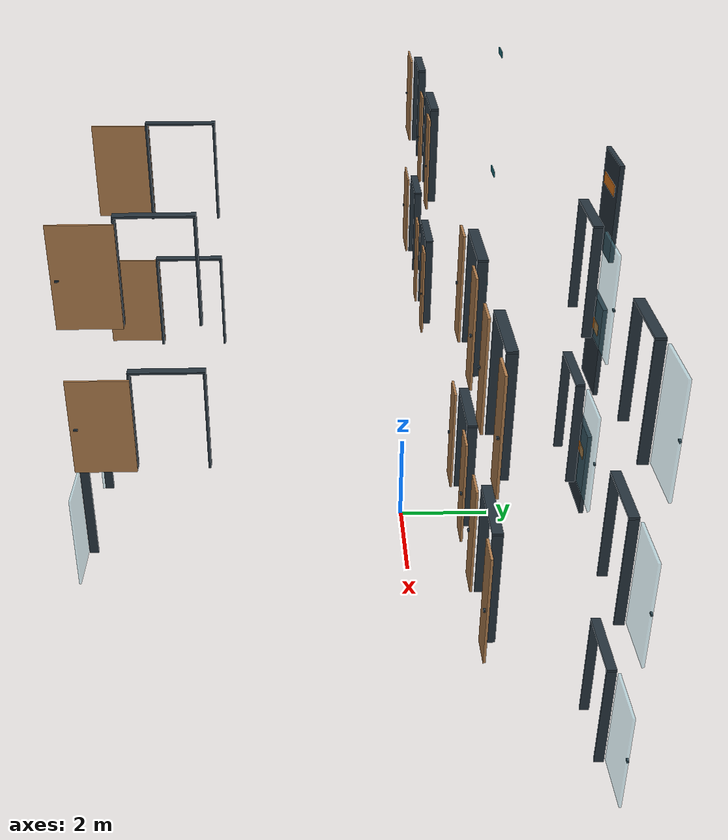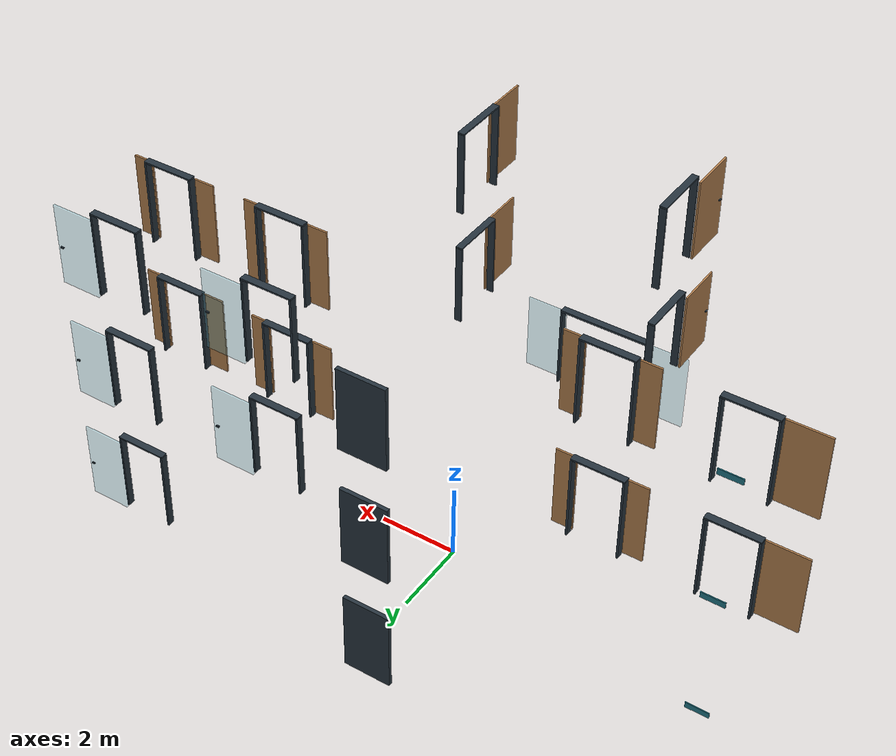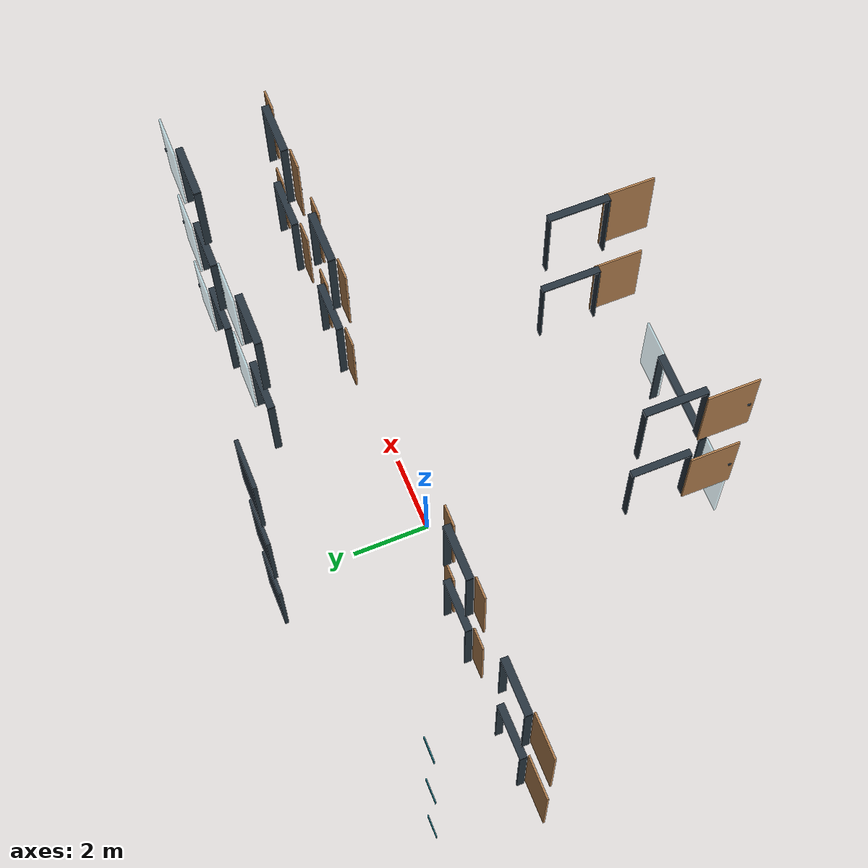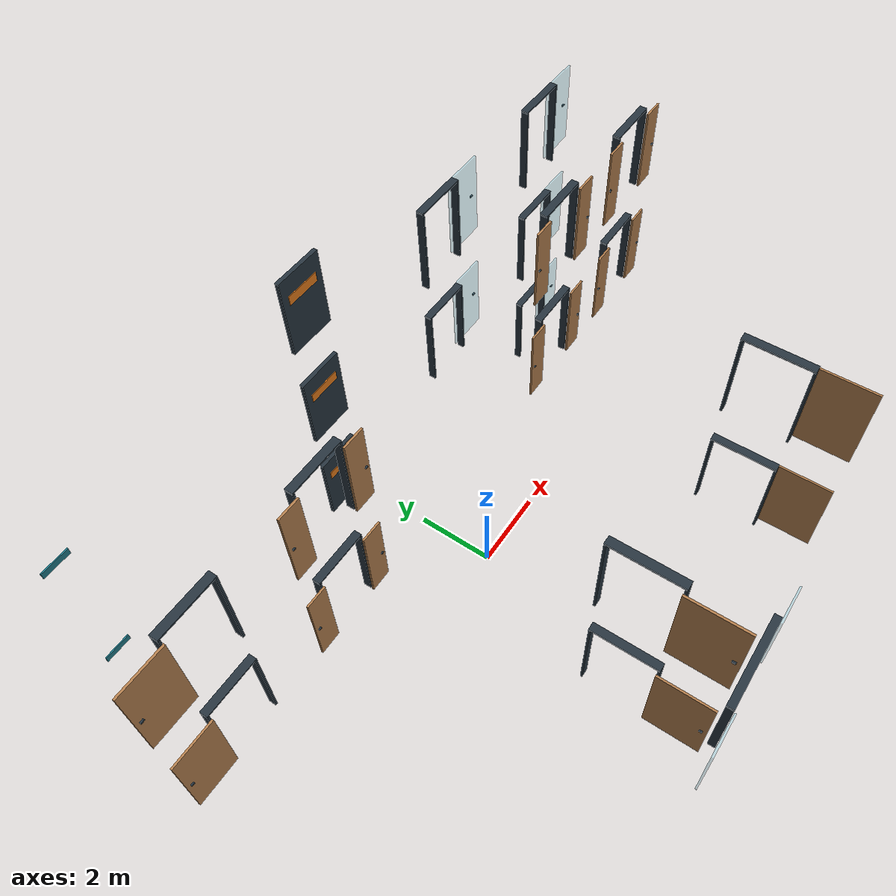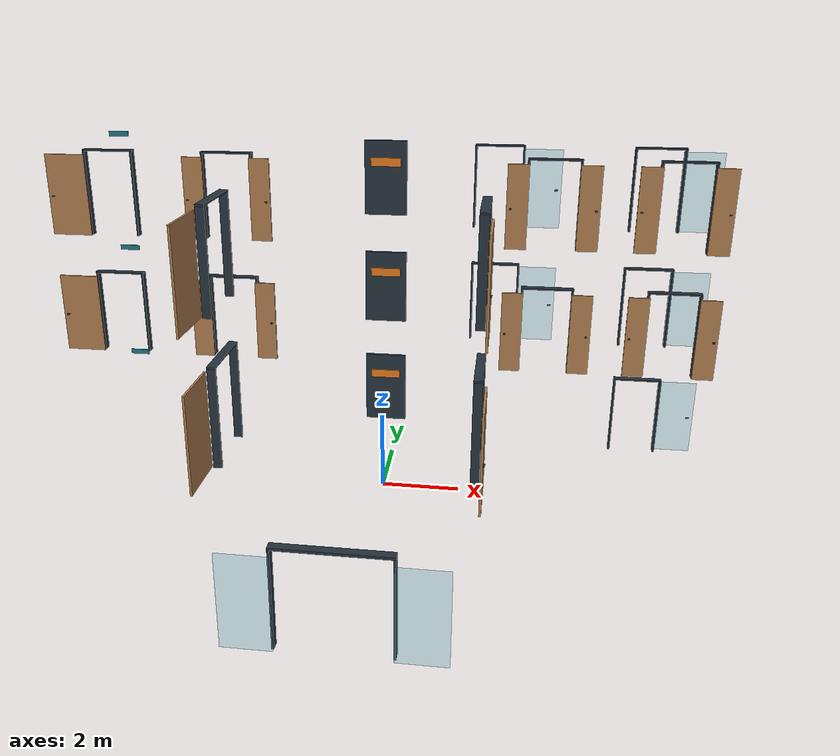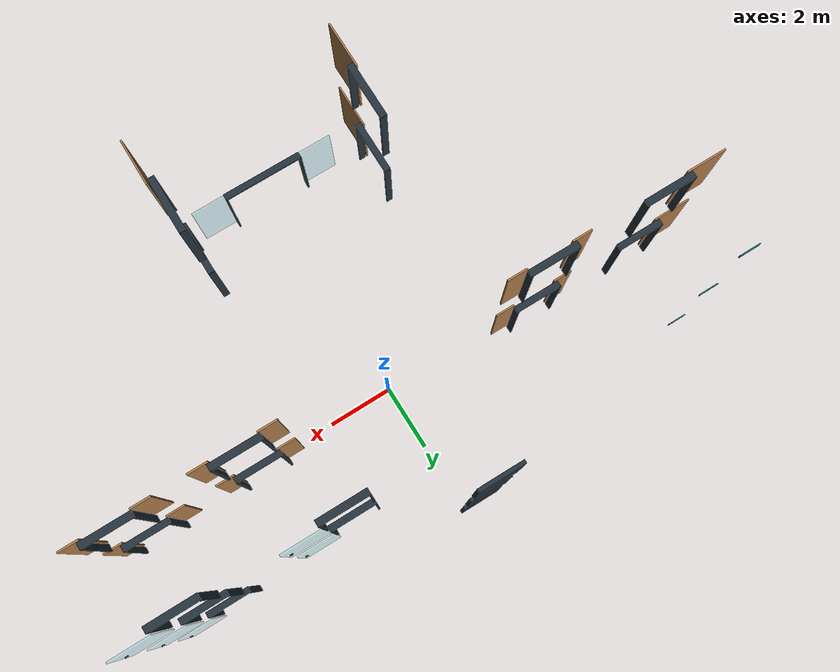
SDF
<sdf version="1.6">
 <world name="three_floor">
  <model name="f1_s2_door_nn2">
   <static>true</static>
   <link name="f1_s2_door_nn2_link">
    <collision name="f1_s2_door_nn2_link_jamb_-1_collision">
     <pose>6.175 3 1.08 0 0 0</pose>
     <geometry><box><size>0.05 0.18 2.16</size></box></geometry>
    </collision>
    <visual name="f1_s2_door_nn2_link_jamb_-1_visual">
     <pose>6.175 3 1.08 0 0 0</pose>
     <geometry><box><size>0.05 0.18 2.16</size></box></geometry>
     <material><ambient>0.15 0.2 0.24 1</ambient><diffuse>0.15 0.2 0.24 1</diffuse></material>
    </visual>
    <collision name="f1_s2_door_nn2_link_jamb_1_collision">
     <pose>7.425 3 1.08 0 0 0</pose>
     <geometry><box><size>0.05 0.18 2.16</size></box></geometry>
    </collision>
    <visual name="f1_s2_door_nn2_link_jamb_1_visual">
     <pose>7.425 3 1.08 0 0 0</pose>
     <geometry><box><size>0.05 0.18 2.16</size></box></geometry>
     <material><ambient>0.15 0.2 0.24 1</ambient><diffuse>0.15 0.2 0.24 1</diffuse></material>
    </visual>
    <collision name="f1_s2_door_nn2_link_header_collision">
     <pose>6.8 3 2.18 0 0 0</pose>
     <geometry><box><size>1.3 0.18 0.04</size></box></geometry>
    </collision>
    <visual name="f1_s2_door_nn2_link_header_visual">
     <pose>6.8 3 2.18 0 0 0</pose>
     <geometry><box><size>1.3 0.18 0.04</size></box></geometry>
     <material><ambient>0.15 0.2 0.24 1</ambient><diffuse>0.15 0.2 0.24 1</diffuse></material>
    </visual>
    <collision name="f1_s2_door_nn2_link_open_leaf_collision">
     <pose>7.92 3.15 1.04 0 0 0</pose>
     <geometry><box><size>1.04 0.045 2.08</size></box></geometry>
    </collision>
    <visual name="f1_s2_door_nn2_link_open_leaf_visual">
     <pose>7.92 3.15 1.04 0 0 0</pose>
     <geometry><box><size>1.04 0.045 2.08</size></box></geometry>
     <material><ambient>0.44 0.76 0.83 1</ambient><diffuse>0.44 0.76 0.83 1</diffuse></material>
     <transparency>0.65</transparency>
    </visual>
    <collision name="f1_s2_door_nn2_link_handle_collision">
     <pose>8.32 3.19 1 0 0 0</pose>
     <geometry><box><size>0.08 0.035 0.035</size></box></geometry>
    </collision>
    <visual name="f1_s2_door_nn2_link_handle_visual">
     <pose>8.32 3.19 1 0 0 0</pose>
     <geometry><box><size>0.08 0.035 0.035</size></box></geometry>
     <material><ambient>0.15 0.2 0.24 1</ambient><diffuse>0.15 0.2 0.24 1</diffuse></material>
    </visual>
   </link>
  </model>
  <model name="f1_s2_lift_safety">
   <static>true</static>
   <link name="f1_s2_lift_safety_link">
    <collision name="f1_s2_lift_safety_link_solid_guard_collision">
     <pose>-0.5 4.2 1.05 0 0 0</pose>
     <geometry><box><size>1.2 0.1 2.1</size></box></geometry>
    </collision>
    <visual name="f1_s2_lift_safety_link_solid_guard_visual">
     <pose>-0.5 4.2 1.05 0 0 0</pose>
     <geometry><box><size>1.2 0.1 2.1</size></box></geometry>
     <material><ambient>0.15 0.2 0.24 1</ambient><diffuse>0.15 0.2 0.24 1</diffuse></material>
    </visual>
    <visual name="f1_s2_lift_safety_link_warning_visual">
     <pose>-0.5 4.139 1.5 0 0 0</pose>
     <geometry><box><size>0.85 0.015 0.24</size></box></geometry>
     <material><ambient>0.9 0.48 0.1 1</ambient><diffuse>0.9 0.48 0.1 1</diffuse></material>
    </visual>
   </link>
  </model>
  <model name="f1_s2_stair_sign">
   <static>true</static>
   <link name="f1_s2_stair_sign_link">
    <visual name="f1_s2_stair_sign_link_floor_indicator_visual">
     <pose>-7.75 2.91 2.31 0 0 0</pose>
     <geometry><box><size>0.55 0.025 0.14</size></box></geometry>
     <material><ambient>0.12 0.46 0.52 1</ambient><diffuse>0.12 0.46 0.52 1</diffuse></material>
    </visual>
   </link>
  </model>
  <model name="f2_s2_door_sw">
   <static>true</static>
   <link name="f2_s2_door_sw_link">
    <collision name="f2_s2_door_sw_link_jamb_-1_collision">
     <pose>-2.6 -5.525 4.28 0 0 0</pose>
     <geometry><box><size>0.18 0.05 2.16</size></box></geometry>
    </collision>
    <visual name="f2_s2_door_sw_link_jamb_-1_visual">
     <pose>-2.6 -5.525 4.28 0 0 0</pose>
     <geometry><box><size>0.18 0.05 2.16</size></box></geometry>
     <material><ambient>0.15 0.2 0.24 1</ambient><diffuse>0.15 0.2 0.24 1</diffuse></material>
    </visual>
    <collision name="f2_s2_door_sw_link_jamb_1_collision">
     <pose>-2.6 -4.075 4.28 0 0 0</pose>
     <geometry><box><size>0.18 0.05 2.16</size></box></geometry>
    </collision>
    <visual name="f2_s2_door_sw_link_jamb_1_visual">
     <pose>-2.6 -4.075 4.28 0 0 0</pose>
     <geometry><box><size>0.18 0.05 2.16</size></box></geometry>
     <material><ambient>0.15 0.2 0.24 1</ambient><diffuse>0.15 0.2 0.24 1</diffuse></material>
    </visual>
    <collision name="f2_s2_door_sw_link_header_collision">
     <pose>-2.6 -4.8 5.38 0 0 0</pose>
     <geometry><box><size>0.18 1.5 0.04</size></box></geometry>
    </collision>
    <visual name="f2_s2_door_sw_link_header_visual">
     <pose>-2.6 -4.8 5.38 0 0 0</pose>
     <geometry><box><size>0.18 1.5 0.04</size></box></geometry>
     <material><ambient>0.15 0.2 0.24 1</ambient><diffuse>0.15 0.2 0.24 1</diffuse></material>
    </visual>
    <collision name="f2_s2_door_sw_link_open_leaf_collision">
     <pose>-2.75 -6.12 4.24 0 0 0</pose>
     <geometry><box><size>0.045 1.24 2.08</size></box></geometry>
    </collision>
    <visual name="f2_s2_door_sw_link_open_leaf_visual">
     <pose>-2.75 -6.12 4.24 0 0 0</pose>
     <geometry><box><size>0.045 1.24 2.08</size></box></geometry>
     <material><ambient>0.69 0.49 0.3 1</ambient><diffuse>0.69 0.49 0.3 1</diffuse></material>
    </visual>
    <collision name="f2_s2_door_sw_link_handle_collision">
     <pose>-2.79 -6.62 4.2 0 0 0</pose>
     <geometry><box><size>0.035 0.08 0.035</size></box></geometry>
    </collision>
    <visual name="f2_s2_door_sw_link_handle_visual">
     <pose>-2.79 -6.62 4.2 0 0 0</pose>
     <geometry><box><size>0.035 0.08 0.035</size></box></geometry>
     <material><ambient>0.15 0.2 0.24 1</ambient><diffuse>0.15 0.2 0.24 1</diffuse></material>
    </visual>
   </link>
  </model>
  <model name="f2_s2_door_se">
   <static>true</static>
   <link name="f2_s2_door_se_link">
    <collision name="f2_s2_door_se_link_jamb_-1_collision">
     <pose>2.6 -5.525 4.28 0 0 0</pose>
     <geometry><box><size>0.18 0.05 2.16</size></box></geometry>
    </collision>
    <visual name="f2_s2_door_se_link_jamb_-1_visual">
     <pose>2.6 -5.525 4.28 0 0 0</pose>
     <geometry><box><size>0.18 0.05 2.16</size></box></geometry>
     <material><ambient>0.15 0.2 0.24 1</ambient><diffuse>0.15 0.2 0.24 1</diffuse></material>
    </visual>
    <collision name="f2_s2_door_se_link_jamb_1_collision">
     <pose>2.6 -4.075 4.28 0 0 0</pose>
     <geometry><box><size>0.18 0.05 2.16</size></box></geometry>
    </collision>
    <visual name="f2_s2_door_se_link_jamb_1_visual">
     <pose>2.6 -4.075 4.28 0 0 0</pose>
     <geometry><box><size>0.18 0.05 2.16</size></box></geometry>
     <material><ambient>0.15 0.2 0.24 1</ambient><diffuse>0.15 0.2 0.24 1</diffuse></material>
    </visual>
    <collision name="f2_s2_door_se_link_header_collision">
     <pose>2.6 -4.8 5.38 0 0 0</pose>
     <geometry><box><size>0.18 1.5 0.04</size></box></geometry>
    </collision>
    <visual name="f2_s2_door_se_link_header_visual">
     <pose>2.6 -4.8 5.38 0 0 0</pose>
     <geometry><box><size>0.18 1.5 0.04</size></box></geometry>
     <material><ambient>0.15 0.2 0.24 1</ambient><diffuse>0.15 0.2 0.24 1</diffuse></material>
    </visual>
    <collision name="f2_s2_door_se_link_open_leaf_collision">
     <pose>2.75 -6.12 4.24 0 0 0</pose>
     <geometry><box><size>0.045 1.24 2.08</size></box></geometry>
    </collision>
    <visual name="f2_s2_door_se_link_open_leaf_visual">
     <pose>2.75 -6.12 4.24 0 0 0</pose>
     <geometry><box><size>0.045 1.24 2.08</size></box></geometry>
     <material><ambient>0.69 0.49 0.3 1</ambient><diffuse>0.69 0.49 0.3 1</diffuse></material>
    </visual>
    <collision name="f2_s2_door_se_link_handle_collision">
     <pose>2.79 -6.62 4.2 0 0 0</pose>
     <geometry><box><size>0.035 0.08 0.035</size></box></geometry>
    </collision>
    <visual name="f2_s2_door_se_link_handle_visual">
     <pose>2.79 -6.62 4.2 0 0 0</pose>
     <geometry><box><size>0.035 0.08 0.035</size></box></geometry>
     <material><ambient>0.15 0.2 0.24 1</ambient><diffuse>0.15 0.2 0.24 1</diffuse></material>
    </visual>
   </link>
  </model>
  <model name="f2_s2_door_wn1">
   <static>true</static>
   <link name="f2_s2_door_wn1_link">
    <collision name="f2_s2_door_wn1_link_jamb_-1_collision">
     <pose>-7.775 0.8 4.28 0 0 0</pose>
     <geometry><box><size>0.05 0.18 2.16</size></box></geometry>
    </collision>
    <visual name="f2_s2_door_wn1_link_jamb_-1_visual">
     <pose>-7.775 0.8 4.28 0 0 0</pose>
     <geometry><box><size>0.05 0.18 2.16</size></box></geometry>
     <material><ambient>0.15 0.2 0.24 1</ambient><diffuse>0.15 0.2 0.24 1</diffuse></material>
    </visual>
    <collision name="f2_s2_door_wn1_link_jamb_1_collision">
     <pose>-6.525 0.8 4.28 0 0 0</pose>
     <geometry><box><size>0.05 0.18 2.16</size></box></geometry>
    </collision>
    <visual name="f2_s2_door_wn1_link_jamb_1_visual">
     <pose>-6.525 0.8 4.28 0 0 0</pose>
     <geometry><box><size>0.05 0.18 2.16</size></box></geometry>
     <material><ambient>0.15 0.2 0.24 1</ambient><diffuse>0.15 0.2 0.24 1</diffuse></material>
    </visual>
    <collision name="f2_s2_door_wn1_link_header_collision">
     <pose>-7.15 0.8 5.38 0 0 0</pose>
     <geometry><box><size>1.3 0.18 0.04</size></box></geometry>
    </collision>
    <visual name="f2_s2_door_wn1_link_header_visual">
     <pose>-7.15 0.8 5.38 0 0 0</pose>
     <geometry><box><size>1.3 0.18 0.04</size></box></geometry>
     <material><ambient>0.15 0.2 0.24 1</ambient><diffuse>0.15 0.2 0.24 1</diffuse></material>
    </visual>
    <collision name="f2_s2_door_wn1_link_open_leaf_collision">
     <pose>-8.27 0.65 4.24 0 0 0</pose>
     <geometry><box><size>1.04 0.045 2.08</size></box></geometry>
    </collision>
    <visual name="f2_s2_door_wn1_link_open_leaf_visual">
     <pose>-8.27 0.65 4.24 0 0 0</pose>
     <geometry><box><size>1.04 0.045 2.08</size></box></geometry>
     <material><ambient>0.69 0.49 0.3 1</ambient><diffuse>0.69 0.49 0.3 1</diffuse></material>
    </visual>
    <collision name="f2_s2_door_wn1_link_handle_collision">
     <pose>-8.67 0.61 4.2 0 0 0</pose>
     <geometry><box><size>0.08 0.035 0.035</size></box></geometry>
    </collision>
    <visual name="f2_s2_door_wn1_link_handle_visual">
     <pose>-8.67 0.61 4.2 0 0 0</pose>
     <geometry><box><size>0.08 0.035 0.035</size></box></geometry>
     <material><ambient>0.15 0.2 0.24 1</ambient><diffuse>0.15 0.2 0.24 1</diffuse></material>
    </visual>
   </link>
  </model>
  <model name="f2_s2_door_wn2">
   <static>true</static>
   <link name="f2_s2_door_wn2_link">
    <collision name="f2_s2_door_wn2_link_jamb_-1_collision">
     <pose>-4.675 0.8 4.28 0 0 0</pose>
     <geometry><box><size>0.05 0.18 2.16</size></box></geometry>
    </collision>
    <visual name="f2_s2_door_wn2_link_jamb_-1_visual">
     <pose>-4.675 0.8 4.28 0 0 0</pose>
     <geometry><box><size>0.05 0.18 2.16</size></box></geometry>
     <material><ambient>0.15 0.2 0.24 1</ambient><diffuse>0.15 0.2 0.24 1</diffuse></material>
    </visual>
    <collision name="f2_s2_door_wn2_link_jamb_1_collision">
     <pose>-3.425 0.8 4.28 0 0 0</pose>
     <geometry><box><size>0.05 0.18 2.16</size></box></geometry>
    </collision>
    <visual name="f2_s2_door_wn2_link_jamb_1_visual">
     <pose>-3.425 0.8 4.28 0 0 0</pose>
     <geometry><box><size>0.05 0.18 2.16</size></box></geometry>
     <material><ambient>0.15 0.2 0.24 1</ambient><diffuse>0.15 0.2 0.24 1</diffuse></material>
    </visual>
    <collision name="f2_s2_door_wn2_link_header_collision">
     <pose>-4.05 0.8 5.38 0 0 0</pose>
     <geometry><box><size>1.3 0.18 0.04</size></box></geometry>
    </collision>
    <visual name="f2_s2_door_wn2_link_header_visual">
     <pose>-4.05 0.8 5.38 0 0 0</pose>
     <geometry><box><size>1.3 0.18 0.04</size></box></geometry>
     <material><ambient>0.15 0.2 0.24 1</ambient><diffuse>0.15 0.2 0.24 1</diffuse></material>
    </visual>
    <collision name="f2_s2_door_wn2_link_open_leaf_-1_collision">
     <pose>-4.91 0.65 4.24 0 0 0</pose>
     <geometry><box><size>0.52 0.045 2.08</size></box></geometry>
    </collision>
    <visual name="f2_s2_door_wn2_link_open_leaf_-1_visual">
     <pose>-4.91 0.65 4.24 0 0 0</pose>
     <geometry><box><size>0.52 0.045 2.08</size></box></geometry>
     <material><ambient>0.69 0.49 0.3 1</ambient><diffuse>0.69 0.49 0.3 1</diffuse></material>
    </visual>
    <collision name="f2_s2_door_wn2_link_handle_-1_collision">
     <pose>-5.07 0.61 4.2 0 0 0</pose>
     <geometry><box><size>0.06 0.035 0.035</size></box></geometry>
    </collision>
    <visual name="f2_s2_door_wn2_link_handle_-1_visual">
     <pose>-5.07 0.61 4.2 0 0 0</pose>
     <geometry><box><size>0.06 0.035 0.035</size></box></geometry>
     <material><ambient>0.15 0.2 0.24 1</ambient><diffuse>0.15 0.2 0.24 1</diffuse></material>
    </visual>
    <collision name="f2_s2_door_wn2_link_open_leaf_1_collision">
     <pose>-3.19 0.65 4.24 0 0 0</pose>
     <geometry><box><size>0.52 0.045 2.08</size></box></geometry>
    </collision>
    <visual name="f2_s2_door_wn2_link_open_leaf_1_visual">
     <pose>-3.19 0.65 4.24 0 0 0</pose>
     <geometry><box><size>0.52 0.045 2.08</size></box></geometry>
     <material><ambient>0.69 0.49 0.3 1</ambient><diffuse>0.69 0.49 0.3 1</diffuse></material>
    </visual>
    <collision name="f2_s2_door_wn2_link_handle_1_collision">
     <pose>-3.03 0.61 4.2 0 0 0</pose>
     <geometry><box><size>0.06 0.035 0.035</size></box></geometry>
    </collision>
    <visual name="f2_s2_door_wn2_link_handle_1_visual">
     <pose>-3.03 0.61 4.2 0 0 0</pose>
     <geometry><box><size>0.06 0.035 0.035</size></box></geometry>
     <material><ambient>0.15 0.2 0.24 1</ambient><diffuse>0.15 0.2 0.24 1</diffuse></material>
    </visual>
   </link>
  </model>
  <model name="f2_s2_door_en1">
   <static>true</static>
   <link name="f2_s2_door_en1_link">
    <collision name="f2_s2_door_en1_link_jamb_-1_collision">
     <pose>3.425 0.8 4.28 0 0 0</pose>
     <geometry><box><size>0.05 0.18 2.16</size></box></geometry>
    </collision>
    <visual name="f2_s2_door_en1_link_jamb_-1_visual">
     <pose>3.425 0.8 4.28 0 0 0</pose>
     <geometry><box><size>0.05 0.18 2.16</size></box></geometry>
     <material><ambient>0.15 0.2 0.24 1</ambient><diffuse>0.15 0.2 0.24 1</diffuse></material>
    </visual>
    <collision name="f2_s2_door_en1_link_jamb_1_collision">
     <pose>4.675 0.8 4.28 0 0 0</pose>
     <geometry><box><size>0.05 0.18 2.16</size></box></geometry>
    </collision>
    <visual name="f2_s2_door_en1_link_jamb_1_visual">
     <pose>4.675 0.8 4.28 0 0 0</pose>
     <geometry><box><size>0.05 0.18 2.16</size></box></geometry>
     <material><ambient>0.15 0.2 0.24 1</ambient><diffuse>0.15 0.2 0.24 1</diffuse></material>
    </visual>
    <collision name="f2_s2_door_en1_link_header_collision">
     <pose>4.05 0.8 5.38 0 0 0</pose>
     <geometry><box><size>1.3 0.18 0.04</size></box></geometry>
    </collision>
    <visual name="f2_s2_door_en1_link_header_visual">
     <pose>4.05 0.8 5.38 0 0 0</pose>
     <geometry><box><size>1.3 0.18 0.04</size></box></geometry>
     <material><ambient>0.15 0.2 0.24 1</ambient><diffuse>0.15 0.2 0.24 1</diffuse></material>
    </visual>
    <collision name="f2_s2_door_en1_link_open_leaf_-1_collision">
     <pose>3.19 0.65 4.24 0 0 0</pose>
     <geometry><box><size>0.52 0.045 2.08</size></box></geometry>
    </collision>
    <visual name="f2_s2_door_en1_link_open_leaf_-1_visual">
     <pose>3.19 0.65 4.24 0 0 0</pose>
     <geometry><box><size>0.52 0.045 2.08</size></box></geometry>
     <material><ambient>0.69 0.49 0.3 1</ambient><diffuse>0.69 0.49 0.3 1</diffuse></material>
    </visual>
    <collision name="f2_s2_door_en1_link_handle_-1_collision">
     <pose>3.03 0.61 4.2 0 0 0</pose>
     <geometry><box><size>0.06 0.035 0.035</size></box></geometry>
    </collision>
    <visual name="f2_s2_door_en1_link_handle_-1_visual">
     <pose>3.03 0.61 4.2 0 0 0</pose>
     <geometry><box><size>0.06 0.035 0.035</size></box></geometry>
     <material><ambient>0.15 0.2 0.24 1</ambient><diffuse>0.15 0.2 0.24 1</diffuse></material>
    </visual>
    <collision name="f2_s2_door_en1_link_open_leaf_1_collision">
     <pose>4.91 0.65 4.24 0 0 0</pose>
     <geometry><box><size>0.52 0.045 2.08</size></box></geometry>
    </collision>
    <visual name="f2_s2_door_en1_link_open_leaf_1_visual">
     <pose>4.91 0.65 4.24 0 0 0</pose>
     <geometry><box><size>0.52 0.045 2.08</size></box></geometry>
     <material><ambient>0.69 0.49 0.3 1</ambient><diffuse>0.69 0.49 0.3 1</diffuse></material>
    </visual>
    <collision name="f2_s2_door_en1_link_handle_1_collision">
     <pose>5.07 0.61 4.2 0 0 0</pose>
     <geometry><box><size>0.06 0.035 0.035</size></box></geometry>
    </collision>
    <visual name="f2_s2_door_en1_link_handle_1_visual">
     <pose>5.07 0.61 4.2 0 0 0</pose>
     <geometry><box><size>0.06 0.035 0.035</size></box></geometry>
     <material><ambient>0.15 0.2 0.24 1</ambient><diffuse>0.15 0.2 0.24 1</diffuse></material>
    </visual>
   </link>
  </model>
  <model name="f2_s2_door_en2">
   <static>true</static>
   <link name="f2_s2_door_en2_link">
    <collision name="f2_s2_door_en2_link_jamb_-1_collision">
     <pose>6.525 0.8 4.28 0 0 0</pose>
     <geometry><box><size>0.05 0.18 2.16</size></box></geometry>
    </collision>
    <visual name="f2_s2_door_en2_link_jamb_-1_visual">
     <pose>6.525 0.8 4.28 0 0 0</pose>
     <geometry><box><size>0.05 0.18 2.16</size></box></geometry>
     <material><ambient>0.15 0.2 0.24 1</ambient><diffuse>0.15 0.2 0.24 1</diffuse></material>
    </visual>
    <collision name="f2_s2_door_en2_link_jamb_1_collision">
     <pose>7.775 0.8 4.28 0 0 0</pose>
     <geometry><box><size>0.05 0.18 2.16</size></box></geometry>
    </collision>
    <visual name="f2_s2_door_en2_link_jamb_1_visual">
     <pose>7.775 0.8 4.28 0 0 0</pose>
     <geometry><box><size>0.05 0.18 2.16</size></box></geometry>
     <material><ambient>0.15 0.2 0.24 1</ambient><diffuse>0.15 0.2 0.24 1</diffuse></material>
    </visual>
    <collision name="f2_s2_door_en2_link_header_collision">
     <pose>7.15 0.8 5.38 0 0 0</pose>
     <geometry><box><size>1.3 0.18 0.04</size></box></geometry>
    </collision>
    <visual name="f2_s2_door_en2_link_header_visual">
     <pose>7.15 0.8 5.38 0 0 0</pose>
     <geometry><box><size>1.3 0.18 0.04</size></box></geometry>
     <material><ambient>0.15 0.2 0.24 1</ambient><diffuse>0.15 0.2 0.24 1</diffuse></material>
    </visual>
    <collision name="f2_s2_door_en2_link_open_leaf_-1_collision">
     <pose>6.29 0.65 4.24 0 0 0</pose>
     <geometry><box><size>0.52 0.045 2.08</size></box></geometry>
    </collision>
    <visual name="f2_s2_door_en2_link_open_leaf_-1_visual">
     <pose>6.29 0.65 4.24 0 0 0</pose>
     <geometry><box><size>0.52 0.045 2.08</size></box></geometry>
     <material><ambient>0.69 0.49 0.3 1</ambient><diffuse>0.69 0.49 0.3 1</diffuse></material>
    </visual>
    <collision name="f2_s2_door_en2_link_handle_-1_collision">
     <pose>6.13 0.61 4.2 0 0 0</pose>
     <geometry><box><size>0.06 0.035 0.035</size></box></geometry>
    </collision>
    <visual name="f2_s2_door_en2_link_handle_-1_visual">
     <pose>6.13 0.61 4.2 0 0 0</pose>
     <geometry><box><size>0.06 0.035 0.035</size></box></geometry>
     <material><ambient>0.15 0.2 0.24 1</ambient><diffuse>0.15 0.2 0.24 1</diffuse></material>
    </visual>
    <collision name="f2_s2_door_en2_link_open_leaf_1_collision">
     <pose>8.01 0.65 4.24 0 0 0</pose>
     <geometry><box><size>0.52 0.045 2.08</size></box></geometry>
    </collision>
    <visual name="f2_s2_door_en2_link_open_leaf_1_visual">
     <pose>8.01 0.65 4.24 0 0 0</pose>
     <geometry><box><size>0.52 0.045 2.08</size></box></geometry>
     <material><ambient>0.69 0.49 0.3 1</ambient><diffuse>0.69 0.49 0.3 1</diffuse></material>
    </visual>
    <collision name="f2_s2_door_en2_link_handle_1_collision">
     <pose>8.17 0.61 4.2 0 0 0</pose>
     <geometry><box><size>0.06 0.035 0.035</size></box></geometry>
    </collision>
    <visual name="f2_s2_door_en2_link_handle_1_visual">
     <pose>8.17 0.61 4.2 0 0 0</pose>
     <geometry><box><size>0.06 0.035 0.035</size></box></geometry>
     <material><ambient>0.15 0.2 0.24 1</ambient><diffuse>0.15 0.2 0.24 1</diffuse></material>
    </visual>
   </link>
  </model>
  <model name="f2_s2_door_nn1">
   <static>true</static>
   <link name="f2_s2_door_nn1_link">
    <collision name="f2_s2_door_nn1_link_jamb_-1_collision">
     <pose>2.075 3 4.28 0 0 0</pose>
     <geometry><box><size>0.05 0.18 2.16</size></box></geometry>
    </collision>
    <visual name="f2_s2_door_nn1_link_jamb_-1_visual">
     <pose>2.075 3 4.28 0 0 0</pose>
     <geometry><box><size>0.05 0.18 2.16</size></box></geometry>
     <material><ambient>0.15 0.2 0.24 1</ambient><diffuse>0.15 0.2 0.24 1</diffuse></material>
    </visual>
    <collision name="f2_s2_door_nn1_link_jamb_1_collision">
     <pose>3.325 3 4.28 0 0 0</pose>
     <geometry><box><size>0.05 0.18 2.16</size></box></geometry>
    </collision>
    <visual name="f2_s2_door_nn1_link_jamb_1_visual">
     <pose>3.325 3 4.28 0 0 0</pose>
     <geometry><box><size>0.05 0.18 2.16</size></box></geometry>
     <material><ambient>0.15 0.2 0.24 1</ambient><diffuse>0.15 0.2 0.24 1</diffuse></material>
    </visual>
    <collision name="f2_s2_door_nn1_link_header_collision">
     <pose>2.7 3 5.38 0 0 0</pose>
     <geometry><box><size>1.3 0.18 0.04</size></box></geometry>
    </collision>
    <visual name="f2_s2_door_nn1_link_header_visual">
     <pose>2.7 3 5.38 0 0 0</pose>
     <geometry><box><size>1.3 0.18 0.04</size></box></geometry>
     <material><ambient>0.15 0.2 0.24 1</ambient><diffuse>0.15 0.2 0.24 1</diffuse></material>
    </visual>
    <collision name="f2_s2_door_nn1_link_open_leaf_collision">
     <pose>3.82 3.15 4.24 0 0 0</pose>
     <geometry><box><size>1.04 0.045 2.08</size></box></geometry>
    </collision>
    <visual name="f2_s2_door_nn1_link_open_leaf_visual">
     <pose>3.82 3.15 4.24 0 0 0</pose>
     <geometry><box><size>1.04 0.045 2.08</size></box></geometry>
     <material><ambient>0.44 0.76 0.83 1</ambient><diffuse>0.44 0.76 0.83 1</diffuse></material>
     <transparency>0.65</transparency>
    </visual>
    <collision name="f2_s2_door_nn1_link_handle_collision">
     <pose>4.22 3.19 4.2 0 0 0</pose>
     <geometry><box><size>0.08 0.035 0.035</size></box></geometry>
    </collision>
    <visual name="f2_s2_door_nn1_link_handle_visual">
     <pose>4.22 3.19 4.2 0 0 0</pose>
     <geometry><box><size>0.08 0.035 0.035</size></box></geometry>
     <material><ambient>0.15 0.2 0.24 1</ambient><diffuse>0.15 0.2 0.24 1</diffuse></material>
    </visual>
   </link>
  </model>
  <model name="f2_s2_door_nn2">
   <static>true</static>
   <link name="f2_s2_door_nn2_link">
    <collision name="f2_s2_door_nn2_link_jamb_-1_collision">
     <pose>6.175 3 4.28 0 0 0</pose>
     <geometry><box><size>0.05 0.18 2.16</size></box></geometry>
    </collision>
    <visual name="f2_s2_door_nn2_link_jamb_-1_visual">
     <pose>6.175 3 4.28 0 0 0</pose>
     <geometry><box><size>0.05 0.18 2.16</size></box></geometry>
     <material><ambient>0.15 0.2 0.24 1</ambient><diffuse>0.15 0.2 0.24 1</diffuse></material>
    </visual>
    <collision name="f2_s2_door_nn2_link_jamb_1_collision">
     <pose>7.425 3 4.28 0 0 0</pose>
     <geometry><box><size>0.05 0.18 2.16</size></box></geometry>
    </collision>
    <visual name="f2_s2_door_nn2_link_jamb_1_visual">
     <pose>7.425 3 4.28 0 0 0</pose>
     <geometry><box><size>0.05 0.18 2.16</size></box></geometry>
     <material><ambient>0.15 0.2 0.24 1</ambient><diffuse>0.15 0.2 0.24 1</diffuse></material>
    </visual>
    <collision name="f2_s2_door_nn2_link_header_collision">
     <pose>6.8 3 5.38 0 0 0</pose>
     <geometry><box><size>1.3 0.18 0.04</size></box></geometry>
    </collision>
    <visual name="f2_s2_door_nn2_link_header_visual">
     <pose>6.8 3 5.38 0 0 0</pose>
     <geometry><box><size>1.3 0.18 0.04</size></box></geometry>
     <material><ambient>0.15 0.2 0.24 1</ambient><diffuse>0.15 0.2 0.24 1</diffuse></material>
    </visual>
    <collision name="f2_s2_door_nn2_link_open_leaf_collision">
     <pose>7.92 3.15 4.24 0 0 0</pose>
     <geometry><box><size>1.04 0.045 2.08</size></box></geometry>
    </collision>
    <visual name="f2_s2_door_nn2_link_open_leaf_visual">
     <pose>7.92 3.15 4.24 0 0 0</pose>
     <geometry><box><size>1.04 0.045 2.08</size></box></geometry>
     <material><ambient>0.44 0.76 0.83 1</ambient><diffuse>0.44 0.76 0.83 1</diffuse></material>
     <transparency>0.65</transparency>
    </visual>
    <collision name="f2_s2_door_nn2_link_handle_collision">
     <pose>8.32 3.19 4.2 0 0 0</pose>
     <geometry><box><size>0.08 0.035 0.035</size></box></geometry>
    </collision>
    <visual name="f2_s2_door_nn2_link_handle_visual">
     <pose>8.32 3.19 4.2 0 0 0</pose>
     <geometry><box><size>0.08 0.035 0.035</size></box></geometry>
     <material><ambient>0.15 0.2 0.24 1</ambient><diffuse>0.15 0.2 0.24 1</diffuse></material>
    </visual>
   </link>
  </model>
  <model name="f2_s2_lift_safety">
   <static>true</static>
   <link name="f2_s2_lift_safety_link">
    <collision name="f2_s2_lift_safety_link_solid_guard_collision">
     <pose>-0.5 4.2 4.25 0 0 0</pose>
     <geometry><box><size>1.2 0.1 2.1</size></box></geometry>
    </collision>
    <visual name="f2_s2_lift_safety_link_solid_guard_visual">
     <pose>-0.5 4.2 4.25 0 0 0</pose>
     <geometry><box><size>1.2 0.1 2.1</size></box></geometry>
     <material><ambient>0.15 0.2 0.24 1</ambient><diffuse>0.15 0.2 0.24 1</diffuse></material>
    </visual>
    <visual name="f2_s2_lift_safety_link_warning_visual">
     <pose>-0.5 4.139 4.7 0 0 0</pose>
     <geometry><box><size>0.85 0.015 0.24</size></box></geometry>
     <material><ambient>0.9 0.48 0.1 1</ambient><diffuse>0.9 0.48 0.1 1</diffuse></material>
    </visual>
   </link>
  </model>
  <model name="f2_s2_stair_sign">
   <static>true</static>
   <link name="f2_s2_stair_sign_link">
    <visual name="f2_s2_stair_sign_link_floor_indicator_visual">
     <pose>-7.75 2.91 5.51 0 0 0</pose>
     <geometry><box><size>0.55 0.025 0.14</size></box></geometry>
     <material><ambient>0.12 0.46 0.52 1</ambient><diffuse>0.12 0.46 0.52 1</diffuse></material>
    </visual>
   </link>
  </model>
  <model name="f3_s2_door_sw">
   <static>true</static>
   <link name="f3_s2_door_sw_link">
    <collision name="f3_s2_door_sw_link_jamb_-1_collision">
     <pose>-2.6 -5.525 7.48 0 0 0</pose>
     <geometry><box><size>0.18 0.05 2.16</size></box></geometry>
    </collision>
    <visual name="f3_s2_door_sw_link_jamb_-1_visual">
     <pose>-2.6 -5.525 7.48 0 0 0</pose>
     <geometry><box><size>0.18 0.05 2.16</size></box></geometry>
     <material><ambient>0.15 0.2 0.24 1</ambient><diffuse>0.15 0.2 0.24 1</diffuse></material>
    </visual>
    <collision name="f3_s2_door_sw_link_jamb_1_collision">
     <pose>-2.6 -4.075 7.48 0 0 0</pose>
     <geometry><box><size>0.18 0.05 2.16</size></box></geometry>
    </collision>
    <visual name="f3_s2_door_sw_link_jamb_1_visual">
     <pose>-2.6 -4.075 7.48 0 0 0</pose>
     <geometry><box><size>0.18 0.05 2.16</size></box></geometry>
     <material><ambient>0.15 0.2 0.24 1</ambient><diffuse>0.15 0.2 0.24 1</diffuse></material>
    </visual>
    <collision name="f3_s2_door_sw_link_header_collision">
     <pose>-2.6 -4.8 8.58 0 0 0</pose>
     <geometry><box><size>0.18 1.5 0.04</size></box></geometry>
    </collision>
    <visual name="f3_s2_door_sw_link_header_visual">
     <pose>-2.6 -4.8 8.58 0 0 0</pose>
     <geometry><box><size>0.18 1.5 0.04</size></box></geometry>
     <material><ambient>0.15 0.2 0.24 1</ambient><diffuse>0.15 0.2 0.24 1</diffuse></material>
    </visual>
    <collision name="f3_s2_door_sw_link_open_leaf_collision">
     <pose>-2.75 -6.12 7.44 0 0 0</pose>
     <geometry><box><size>0.045 1.24 2.08</size></box></geometry>
    </collision>
    <visual name="f3_s2_door_sw_link_open_leaf_visual">
     <pose>-2.75 -6.12 7.44 0 0 0</pose>
     <geometry><box><size>0.045 1.24 2.08</size></box></geometry>
     <material><ambient>0.69 0.49 0.3 1</ambient><diffuse>0.69 0.49 0.3 1</diffuse></material>
    </visual>
    <collision name="f3_s2_door_sw_link_handle_collision">
     <pose>-2.79 -6.62 7.4 0 0 0</pose>
     <geometry><box><size>0.035 0.08 0.035</size></box></geometry>
    </collision>
    <visual name="f3_s2_door_sw_link_handle_visual">
     <pose>-2.79 -6.62 7.4 0 0 0</pose>
     <geometry><box><size>0.035 0.08 0.035</size></box></geometry>
     <material><ambient>0.15 0.2 0.24 1</ambient><diffuse>0.15 0.2 0.24 1</diffuse></material>
    </visual>
   </link>
  </model>
  <model name="f3_s2_door_se">
   <static>true</static>
   <link name="f3_s2_door_se_link">
    <collision name="f3_s2_door_se_link_jamb_-1_collision">
     <pose>2.6 -5.525 7.48 0 0 0</pose>
     <geometry><box><size>0.18 0.05 2.16</size></box></geometry>
    </collision>
    <visual name="f3_s2_door_se_link_jamb_-1_visual">
     <pose>2.6 -5.525 7.48 0 0 0</pose>
     <geometry><box><size>0.18 0.05 2.16</size></box></geometry>
     <material><ambient>0.15 0.2 0.24 1</ambient><diffuse>0.15 0.2 0.24 1</diffuse></material>
    </visual>
    <collision name="f3_s2_door_se_link_jamb_1_collision">
     <pose>2.6 -4.075 7.48 0 0 0</pose>
     <geometry><box><size>0.18 0.05 2.16</size></box></geometry>
    </collision>
    <visual name="f3_s2_door_se_link_jamb_1_visual">
     <pose>2.6 -4.075 7.48 0 0 0</pose>
     <geometry><box><size>0.18 0.05 2.16</size></box></geometry>
     <material><ambient>0.15 0.2 0.24 1</ambient><diffuse>0.15 0.2 0.24 1</diffuse></material>
    </visual>
    <collision name="f3_s2_door_se_link_header_collision">
     <pose>2.6 -4.8 8.58 0 0 0</pose>
     <geometry><box><size>0.18 1.5 0.04</size></box></geometry>
    </collision>
    <visual name="f3_s2_door_se_link_header_visual">
     <pose>2.6 -4.8 8.58 0 0 0</pose>
     <geometry><box><size>0.18 1.5 0.04</size></box></geometry>
     <material><ambient>0.15 0.2 0.24 1</ambient><diffuse>0.15 0.2 0.24 1</diffuse></material>
    </visual>
    <collision name="f3_s2_door_se_link_open_leaf_collision">
     <pose>2.75 -6.12 7.44 0 0 0</pose>
     <geometry><box><size>0.045 1.24 2.08</size></box></geometry>
    </collision>
    <visual name="f3_s2_door_se_link_open_leaf_visual">
     <pose>2.75 -6.12 7.44 0 0 0</pose>
     <geometry><box><size>0.045 1.24 2.08</size></box></geometry>
     <material><ambient>0.69 0.49 0.3 1</ambient><diffuse>0.69 0.49 0.3 1</diffuse></material>
    </visual>
    <collision name="f3_s2_door_se_link_handle_collision">
     <pose>2.79 -6.62 7.4 0 0 0</pose>
     <geometry><box><size>0.035 0.08 0.035</size></box></geometry>
    </collision>
    <visual name="f3_s2_door_se_link_handle_visual">
     <pose>2.79 -6.62 7.4 0 0 0</pose>
     <geometry><box><size>0.035 0.08 0.035</size></box></geometry>
     <material><ambient>0.15 0.2 0.24 1</ambient><diffuse>0.15 0.2 0.24 1</diffuse></material>
    </visual>
   </link>
  </model>
  <model name="f3_s2_door_wn1">
   <static>true</static>
   <link name="f3_s2_door_wn1_link">
    <collision name="f3_s2_door_wn1_link_jamb_-1_collision">
     <pose>-7.775 0.8 7.48 0 0 0</pose>
     <geometry><box><size>0.05 0.18 2.16</size></box></geometry>
    </collision>
    <visual name="f3_s2_door_wn1_link_jamb_-1_visual">
     <pose>-7.775 0.8 7.48 0 0 0</pose>
     <geometry><box><size>0.05 0.18 2.16</size></box></geometry>
     <material><ambient>0.15 0.2 0.24 1</ambient><diffuse>0.15 0.2 0.24 1</diffuse></material>
    </visual>
    <collision name="f3_s2_door_wn1_link_jamb_1_collision">
     <pose>-6.525 0.8 7.48 0 0 0</pose>
     <geometry><box><size>0.05 0.18 2.16</size></box></geometry>
    </collision>
    <visual name="f3_s2_door_wn1_link_jamb_1_visual">
     <pose>-6.525 0.8 7.48 0 0 0</pose>
     <geometry><box><size>0.05 0.18 2.16</size></box></geometry>
     <material><ambient>0.15 0.2 0.24 1</ambient><diffuse>0.15 0.2 0.24 1</diffuse></material>
    </visual>
    <collision name="f3_s2_door_wn1_link_header_collision">
     <pose>-7.15 0.8 8.58 0 0 0</pose>
     <geometry><box><size>1.3 0.18 0.04</size></box></geometry>
    </collision>
    <visual name="f3_s2_door_wn1_link_header_visual">
     <pose>-7.15 0.8 8.58 0 0 0</pose>
     <geometry><box><size>1.3 0.18 0.04</size></box></geometry>
     <material><ambient>0.15 0.2 0.24 1</ambient><diffuse>0.15 0.2 0.24 1</diffuse></material>
    </visual>
    <collision name="f3_s2_door_wn1_link_open_leaf_collision">
     <pose>-8.27 0.65 7.44 0 0 0</pose>
     <geometry><box><size>1.04 0.045 2.08</size></box></geometry>
    </collision>
    <visual name="f3_s2_door_wn1_link_open_leaf_visual">
     <pose>-8.27 0.65 7.44 0 0 0</pose>
     <geometry><box><size>1.04 0.045 2.08</size></box></geometry>
     <material><ambient>0.69 0.49 0.3 1</ambient><diffuse>0.69 0.49 0.3 1</diffuse></material>
    </visual>
    <collision name="f3_s2_door_wn1_link_handle_collision">
     <pose>-8.67 0.61 7.4 0 0 0</pose>
     <geometry><box><size>0.08 0.035 0.035</size></box></geometry>
    </collision>
    <visual name="f3_s2_door_wn1_link_handle_visual">
     <pose>-8.67 0.61 7.4 0 0 0</pose>
     <geometry><box><size>0.08 0.035 0.035</size></box></geometry>
     <material><ambient>0.15 0.2 0.24 1</ambient><diffuse>0.15 0.2 0.24 1</diffuse></material>
    </visual>
   </link>
  </model>
  <model name="f3_s2_door_wn2">
   <static>true</static>
   <link name="f3_s2_door_wn2_link">
    <collision name="f3_s2_door_wn2_link_jamb_-1_collision">
     <pose>-4.675 0.8 7.48 0 0 0</pose>
     <geometry><box><size>0.05 0.18 2.16</size></box></geometry>
    </collision>
    <visual name="f3_s2_door_wn2_link_jamb_-1_visual">
     <pose>-4.675 0.8 7.48 0 0 0</pose>
     <geometry><box><size>0.05 0.18 2.16</size></box></geometry>
     <material><ambient>0.15 0.2 0.24 1</ambient><diffuse>0.15 0.2 0.24 1</diffuse></material>
    </visual>
    <collision name="f3_s2_door_wn2_link_jamb_1_collision">
     <pose>-3.425 0.8 7.48 0 0 0</pose>
     <geometry><box><size>0.05 0.18 2.16</size></box></geometry>
    </collision>
    <visual name="f3_s2_door_wn2_link_jamb_1_visual">
     <pose>-3.425 0.8 7.48 0 0 0</pose>
     <geometry><box><size>0.05 0.18 2.16</size></box></geometry>
     <material><ambient>0.15 0.2 0.24 1</ambient><diffuse>0.15 0.2 0.24 1</diffuse></material>
    </visual>
    <collision name="f3_s2_door_wn2_link_header_collision">
     <pose>-4.05 0.8 8.58 0 0 0</pose>
     <geometry><box><size>1.3 0.18 0.04</size></box></geometry>
    </collision>
    <visual name="f3_s2_door_wn2_link_header_visual">
     <pose>-4.05 0.8 8.58 0 0 0</pose>
     <geometry><box><size>1.3 0.18 0.04</size></box></geometry>
     <material><ambient>0.15 0.2 0.24 1</ambient><diffuse>0.15 0.2 0.24 1</diffuse></material>
    </visual>
    <collision name="f3_s2_door_wn2_link_open_leaf_-1_collision">
     <pose>-4.91 0.65 7.44 0 0 0</pose>
     <geometry><box><size>0.52 0.045 2.08</size></box></geometry>
    </collision>
    <visual name="f3_s2_door_wn2_link_open_leaf_-1_visual">
     <pose>-4.91 0.65 7.44 0 0 0</pose>
     <geometry><box><size>0.52 0.045 2.08</size></box></geometry>
     <material><ambient>0.69 0.49 0.3 1</ambient><diffuse>0.69 0.49 0.3 1</diffuse></material>
    </visual>
    <collision name="f3_s2_door_wn2_link_handle_-1_collision">
     <pose>-5.07 0.61 7.4 0 0 0</pose>
     <geometry><box><size>0.06 0.035 0.035</size></box></geometry>
    </collision>
    <visual name="f3_s2_door_wn2_link_handle_-1_visual">
     <pose>-5.07 0.61 7.4 0 0 0</pose>
     <geometry><box><size>0.06 0.035 0.035</size></box></geometry>
     <material><ambient>0.15 0.2 0.24 1</ambient><diffuse>0.15 0.2 0.24 1</diffuse></material>
    </visual>
    <collision name="f3_s2_door_wn2_link_open_leaf_1_collision">
     <pose>-3.19 0.65 7.44 0 0 0</pose>
     <geometry><box><size>0.52 0.045 2.08</size></box></geometry>
    </collision>
    <visual name="f3_s2_door_wn2_link_open_leaf_1_visual">
     <pose>-3.19 0.65 7.44 0 0 0</pose>
     <geometry><box><size>0.52 0.045 2.08</size></box></geometry>
     <material><ambient>0.69 0.49 0.3 1</ambient><diffuse>0.69 0.49 0.3 1</diffuse></material>
    </visual>
    <collision name="f3_s2_door_wn2_link_handle_1_collision">
     <pose>-3.03 0.61 7.4 0 0 0</pose>
     <geometry><box><size>0.06 0.035 0.035</size></box></geometry>
    </collision>
    <visual name="f3_s2_door_wn2_link_handle_1_visual">
     <pose>-3.03 0.61 7.4 0 0 0</pose>
     <geometry><box><size>0.06 0.035 0.035</size></box></geometry>
     <material><ambient>0.15 0.2 0.24 1</ambient><diffuse>0.15 0.2 0.24 1</diffuse></material>
    </visual>
   </link>
  </model>
  <model name="f3_s2_door_en1">
   <static>true</static>
   <link name="f3_s2_door_en1_link">
    <collision name="f3_s2_door_en1_link_jamb_-1_collision">
     <pose>3.425 0.8 7.48 0 0 0</pose>
     <geometry><box><size>0.05 0.18 2.16</size></box></geometry>
    </collision>
    <visual name="f3_s2_door_en1_link_jamb_-1_visual">
     <pose>3.425 0.8 7.48 0 0 0</pose>
     <geometry><box><size>0.05 0.18 2.16</size></box></geometry>
     <material><ambient>0.15 0.2 0.24 1</ambient><diffuse>0.15 0.2 0.24 1</diffuse></material>
    </visual>
    <collision name="f3_s2_door_en1_link_jamb_1_collision">
     <pose>4.675 0.8 7.48 0 0 0</pose>
     <geometry><box><size>0.05 0.18 2.16</size></box></geometry>
    </collision>
    <visual name="f3_s2_door_en1_link_jamb_1_visual">
     <pose>4.675 0.8 7.48 0 0 0</pose>
     <geometry><box><size>0.05 0.18 2.16</size></box></geometry>
     <material><ambient>0.15 0.2 0.24 1</ambient><diffuse>0.15 0.2 0.24 1</diffuse></material>
    </visual>
    <collision name="f3_s2_door_en1_link_header_collision">
     <pose>4.05 0.8 8.58 0 0 0</pose>
     <geometry><box><size>1.3 0.18 0.04</size></box></geometry>
    </collision>
    <visual name="f3_s2_door_en1_link_header_visual">
     <pose>4.05 0.8 8.58 0 0 0</pose>
     <geometry><box><size>1.3 0.18 0.04</size></box></geometry>
     <material><ambient>0.15 0.2 0.24 1</ambient><diffuse>0.15 0.2 0.24 1</diffuse></material>
    </visual>
    <collision name="f3_s2_door_en1_link_open_leaf_-1_collision">
     <pose>3.19 0.65 7.44 0 0 0</pose>
     <geometry><box><size>0.52 0.045 2.08</size></box></geometry>
    </collision>
    <visual name="f3_s2_door_en1_link_open_leaf_-1_visual">
     <pose>3.19 0.65 7.44 0 0 0</pose>
     <geometry><box><size>0.52 0.045 2.08</size></box></geometry>
     <material><ambient>0.69 0.49 0.3 1</ambient><diffuse>0.69 0.49 0.3 1</diffuse></material>
    </visual>
    <collision name="f3_s2_door_en1_link_handle_-1_collision">
     <pose>3.03 0.61 7.4 0 0 0</pose>
     <geometry><box><size>0.06 0.035 0.035</size></box></geometry>
    </collision>
    <visual name="f3_s2_door_en1_link_handle_-1_visual">
     <pose>3.03 0.61 7.4 0 0 0</pose>
     <geometry><box><size>0.06 0.035 0.035</size></box></geometry>
     <material><ambient>0.15 0.2 0.24 1</ambient><diffuse>0.15 0.2 0.24 1</diffuse></material>
    </visual>
    <collision name="f3_s2_door_en1_link_open_leaf_1_collision">
     <pose>4.91 0.65 7.44 0 0 0</pose>
     <geometry><box><size>0.52 0.045 2.08</size></box></geometry>
    </collision>
    <visual name="f3_s2_door_en1_link_open_leaf_1_visual">
     <pose>4.91 0.65 7.44 0 0 0</pose>
     <geometry><box><size>0.52 0.045 2.08</size></box></geometry>
     <material><ambient>0.69 0.49 0.3 1</ambient><diffuse>0.69 0.49 0.3 1</diffuse></material>
    </visual>
    <collision name="f3_s2_door_en1_link_handle_1_collision">
     <pose>5.07 0.61 7.4 0 0 0</pose>
     <geometry><box><size>0.06 0.035 0.035</size></box></geometry>
    </collision>
    <visual name="f3_s2_door_en1_link_handle_1_visual">
     <pose>5.07 0.61 7.4 0 0 0</pose>
     <geometry><box><size>0.06 0.035 0.035</size></box></geometry>
     <material><ambient>0.15 0.2 0.24 1</ambient><diffuse>0.15 0.2 0.24 1</diffuse></material>
    </visual>
   </link>
  </model>
  <model name="f3_s2_door_en2">
   <static>true</static>
   <link name="f3_s2_door_en2_link">
    <collision name="f3_s2_door_en2_link_jamb_-1_collision">
     <pose>6.525 0.8 7.48 0 0 0</pose>
     <geometry><box><size>0.05 0.18 2.16</size></box></geometry>
    </collision>
    <visual name="f3_s2_door_en2_link_jamb_-1_visual">
     <pose>6.525 0.8 7.48 0 0 0</pose>
     <geometry><box><size>0.05 0.18 2.16</size></box></geometry>
     <material><ambient>0.15 0.2 0.24 1</ambient><diffuse>0.15 0.2 0.24 1</diffuse></material>
    </visual>
    <collision name="f3_s2_door_en2_link_jamb_1_collision">
     <pose>7.775 0.8 7.48 0 0 0</pose>
     <geometry><box><size>0.05 0.18 2.16</size></box></geometry>
    </collision>
    <visual name="f3_s2_door_en2_link_jamb_1_visual">
     <pose>7.775 0.8 7.48 0 0 0</pose>
     <geometry><box><size>0.05 0.18 2.16</size></box></geometry>
     <material><ambient>0.15 0.2 0.24 1</ambient><diffuse>0.15 0.2 0.24 1</diffuse></material>
    </visual>
    <collision name="f3_s2_door_en2_link_header_collision">
     <pose>7.15 0.8 8.58 0 0 0</pose>
     <geometry><box><size>1.3 0.18 0.04</size></box></geometry>
    </collision>
    <visual name="f3_s2_door_en2_link_header_visual">
     <pose>7.15 0.8 8.58 0 0 0</pose>
     <geometry><box><size>1.3 0.18 0.04</size></box></geometry>
     <material><ambient>0.15 0.2 0.24 1</ambient><diffuse>0.15 0.2 0.24 1</diffuse></material>
    </visual>
    <collision name="f3_s2_door_en2_link_open_leaf_-1_collision">
     <pose>6.29 0.65 7.44 0 0 0</pose>
     <geometry><box><size>0.52 0.045 2.08</size></box></geometry>
    </collision>
    <visual name="f3_s2_door_en2_link_open_leaf_-1_visual">
     <pose>6.29 0.65 7.44 0 0 0</pose>
     <geometry><box><size>0.52 0.045 2.08</size></box></geometry>
     <material><ambient>0.69 0.49 0.3 1</ambient><diffuse>0.69 0.49 0.3 1</diffuse></material>
    </visual>
    <collision name="f3_s2_door_en2_link_handle_-1_collision">
     <pose>6.13 0.61 7.4 0 0 0</pose>
     <geometry><box><size>0.06 0.035 0.035</size></box></geometry>
    </collision>
    <visual name="f3_s2_door_en2_link_handle_-1_visual">
     <pose>6.13 0.61 7.4 0 0 0</pose>
     <geometry><box><size>0.06 0.035 0.035</size></box></geometry>
     <material><ambient>0.15 0.2 0.24 1</ambient><diffuse>0.15 0.2 0.24 1</diffuse></material>
    </visual>
    <collision name="f3_s2_door_en2_link_open_leaf_1_collision">
     <pose>8.01 0.65 7.44 0 0 0</pose>
     <geometry><box><size>0.52 0.045 2.08</size></box></geometry>
    </collision>
    <visual name="f3_s2_door_en2_link_open_leaf_1_visual">
     <pose>8.01 0.65 7.44 0 0 0</pose>
     <geometry><box><size>0.52 0.045 2.08</size></box></geometry>
     <material><ambient>0.69 0.49 0.3 1</ambient><diffuse>0.69 0.49 0.3 1</diffuse></material>
    </visual>
    <collision name="f3_s2_door_en2_link_handle_1_collision">
     <pose>8.17 0.61 7.4 0 0 0</pose>
     <geometry><box><size>0.06 0.035 0.035</size></box></geometry>
    </collision>
    <visual name="f3_s2_door_en2_link_handle_1_visual">
     <pose>8.17 0.61 7.4 0 0 0</pose>
     <geometry><box><size>0.06 0.035 0.035</size></box></geometry>
     <material><ambient>0.15 0.2 0.24 1</ambient><diffuse>0.15 0.2 0.24 1</diffuse></material>
    </visual>
   </link>
  </model>
  <model name="f3_s2_door_nn1">
   <static>true</static>
   <link name="f3_s2_door_nn1_link">
    <collision name="f3_s2_door_nn1_link_jamb_-1_collision">
     <pose>2.075 3 7.48 0 0 0</pose>
     <geometry><box><size>0.05 0.18 2.16</size></box></geometry>
    </collision>
    <visual name="f3_s2_door_nn1_link_jamb_-1_visual">
     <pose>2.075 3 7.48 0 0 0</pose>
     <geometry><box><size>0.05 0.18 2.16</size></box></geometry>
     <material><ambient>0.15 0.2 0.24 1</ambient><diffuse>0.15 0.2 0.24 1</diffuse></material>
    </visual>
    <collision name="f3_s2_door_nn1_link_jamb_1_collision">
     <pose>3.325 3 7.48 0 0 0</pose>
     <geometry><box><size>0.05 0.18 2.16</size></box></geometry>
    </collision>
    <visual name="f3_s2_door_nn1_link_jamb_1_visual">
     <pose>3.325 3 7.48 0 0 0</pose>
     <geometry><box><size>0.05 0.18 2.16</size></box></geometry>
     <material><ambient>0.15 0.2 0.24 1</ambient><diffuse>0.15 0.2 0.24 1</diffuse></material>
    </visual>
    <collision name="f3_s2_door_nn1_link_header_collision">
     <pose>2.7 3 8.58 0 0 0</pose>
     <geometry><box><size>1.3 0.18 0.04</size></box></geometry>
    </collision>
    <visual name="f3_s2_door_nn1_link_header_visual">
     <pose>2.7 3 8.58 0 0 0</pose>
     <geometry><box><size>1.3 0.18 0.04</size></box></geometry>
     <material><ambient>0.15 0.2 0.24 1</ambient><diffuse>0.15 0.2 0.24 1</diffuse></material>
    </visual>
    <collision name="f3_s2_door_nn1_link_open_leaf_collision">
     <pose>3.82 3.15 7.44 0 0 0</pose>
     <geometry><box><size>1.04 0.045 2.08</size></box></geometry>
    </collision>
    <visual name="f3_s2_door_nn1_link_open_leaf_visual">
     <pose>3.82 3.15 7.44 0 0 0</pose>
     <geometry><box><size>1.04 0.045 2.08</size></box></geometry>
     <material><ambient>0.44 0.76 0.83 1</ambient><diffuse>0.44 0.76 0.83 1</diffuse></material>
     <transparency>0.65</transparency>
    </visual>
    <collision name="f3_s2_door_nn1_link_handle_collision">
     <pose>4.22 3.19 7.4 0 0 0</pose>
     <geometry><box><size>0.08 0.035 0.035</size></box></geometry>
    </collision>
    <visual name="f3_s2_door_nn1_link_handle_visual">
     <pose>4.22 3.19 7.4 0 0 0</pose>
     <geometry><box><size>0.08 0.035 0.035</size></box></geometry>
     <material><ambient>0.15 0.2 0.24 1</ambient><diffuse>0.15 0.2 0.24 1</diffuse></material>
    </visual>
   </link>
  </model>
  <model name="f3_s2_door_nn2">
   <static>true</static>
   <link name="f3_s2_door_nn2_link">
    <collision name="f3_s2_door_nn2_link_jamb_-1_collision">
     <pose>6.175 3 7.48 0 0 0</pose>
     <geometry><box><size>0.05 0.18 2.16</size></box></geometry>
    </collision>
    <visual name="f3_s2_door_nn2_link_jamb_-1_visual">
     <pose>6.175 3 7.48 0 0 0</pose>
     <geometry><box><size>0.05 0.18 2.16</size></box></geometry>
     <material><ambient>0.15 0.2 0.24 1</ambient><diffuse>0.15 0.2 0.24 1</diffuse></material>
    </visual>
    <collision name="f3_s2_door_nn2_link_jamb_1_collision">
     <pose>7.425 3 7.48 0 0 0</pose>
     <geometry><box><size>0.05 0.18 2.16</size></box></geometry>
    </collision>
    <visual name="f3_s2_door_nn2_link_jamb_1_visual">
     <pose>7.425 3 7.48 0 0 0</pose>
     <geometry><box><size>0.05 0.18 2.16</size></box></geometry>
     <material><ambient>0.15 0.2 0.24 1</ambient><diffuse>0.15 0.2 0.24 1</diffuse></material>
    </visual>
    <collision name="f3_s2_door_nn2_link_header_collision">
     <pose>6.8 3 8.58 0 0 0</pose>
     <geometry><box><size>1.3 0.18 0.04</size></box></geometry>
    </collision>
    <visual name="f3_s2_door_nn2_link_header_visual">
     <pose>6.8 3 8.58 0 0 0</pose>
     <geometry><box><size>1.3 0.18 0.04</size></box></geometry>
     <material><ambient>0.15 0.2 0.24 1</ambient><diffuse>0.15 0.2 0.24 1</diffuse></material>
    </visual>
    <collision name="f3_s2_door_nn2_link_open_leaf_collision">
     <pose>7.92 3.15 7.44 0 0 0</pose>
     <geometry><box><size>1.04 0.045 2.08</size></box></geometry>
    </collision>
    <visual name="f3_s2_door_nn2_link_open_leaf_visual">
     <pose>7.92 3.15 7.44 0 0 0</pose>
     <geometry><box><size>1.04 0.045 2.08</size></box></geometry>
     <material><ambient>0.44 0.76 0.83 1</ambient><diffuse>0.44 0.76 0.83 1</diffuse></material>
     <transparency>0.65</transparency>
    </visual>
    <collision name="f3_s2_door_nn2_link_handle_collision">
     <pose>8.32 3.19 7.4 0 0 0</pose>
     <geometry><box><size>0.08 0.035 0.035</size></box></geometry>
    </collision>
    <visual name="f3_s2_door_nn2_link_handle_visual">
     <pose>8.32 3.19 7.4 0 0 0</pose>
     <geometry><box><size>0.08 0.035 0.035</size></box></geometry>
     <material><ambient>0.15 0.2 0.24 1</ambient><diffuse>0.15 0.2 0.24 1</diffuse></material>
    </visual>
   </link>
  </model>
  <model name="f3_s2_lift_safety">
   <static>true</static>
   <link name="f3_s2_lift_safety_link">
    <collision name="f3_s2_lift_safety_link_solid_guard_collision">
     <pose>-0.5 4.2 7.45 0 0 0</pose>
     <geometry><box><size>1.2 0.1 2.1</size></box></geometry>
    </collision>
    <visual name="f3_s2_lift_safety_link_solid_guard_visual">
     <pose>-0.5 4.2 7.45 0 0 0</pose>
     <geometry><box><size>1.2 0.1 2.1</size></box></geometry>
     <material><ambient>0.15 0.2 0.24 1</ambient><diffuse>0.15 0.2 0.24 1</diffuse></material>
    </visual>
    <visual name="f3_s2_lift_safety_link_warning_visual">
     <pose>-0.5 4.139 7.9 0 0 0</pose>
     <geometry><box><size>0.85 0.015 0.24</size></box></geometry>
     <material><ambient>0.9 0.48 0.1 1</ambient><diffuse>0.9 0.48 0.1 1</diffuse></material>
    </visual>
   </link>
  </model>
  <model name="f3_s2_stair_sign">
   <static>true</static>
   <link name="f3_s2_stair_sign_link">
    <visual name="f3_s2_stair_sign_link_floor_indicator_visual">
     <pose>-7.75 2.91 8.71 0 0 0</pose>
     <geometry><box><size>0.55 0.025 0.14</size></box></geometry>
     <material><ambient>0.12 0.46 0.52 1</ambient><diffuse>0.12 0.46 0.52 1</diffuse></material>
    </visual>
   </link>
  </model>
  <model name="f1_s2_entry">
   <static>true</static>
   <link name="f1_s2_entry_link">
    <collision name="f1_s2_entry_link_jamb-1_collision">
     <pose>-1.225 -6.9 1.15 0 0 0</pose>
     <geometry><box><size>0.05 0.2 2.3</size></box></geometry>
    </collision>
    <visual name="f1_s2_entry_link_jamb-1_visual">
     <pose>-1.225 -6.9 1.15 0 0 0</pose>
     <geometry><box><size>0.05 0.2 2.3</size></box></geometry>
     <material><ambient>0.15 0.2 0.24 1</ambient><diffuse>0.15 0.2 0.24 1</diffuse></material>
    </visual>
    <collision name="f1_s2_entry_link_open_glass-1_collision">
     <pose>-1.76 -7.04 1.08 0 0 0</pose>
     <geometry><box><size>1.1 0.045 2.16</size></box></geometry>
    </collision>
    <visual name="f1_s2_entry_link_open_glass-1_visual">
     <pose>-1.76 -7.04 1.08 0 0 0</pose>
     <geometry><box><size>1.1 0.045 2.16</size></box></geometry>
     <material><ambient>0.44 0.76 0.83 1</ambient><diffuse>0.44 0.76 0.83 1</diffuse></material>
     <transparency>0.65</transparency>
    </visual>
    <collision name="f1_s2_entry_link_jamb1_collision">
     <pose>1.225 -6.9 1.15 0 0 0</pose>
     <geometry><box><size>0.05 0.2 2.3</size></box></geometry>
    </collision>
    <visual name="f1_s2_entry_link_jamb1_visual">
     <pose>1.225 -6.9 1.15 0 0 0</pose>
     <geometry><box><size>0.05 0.2 2.3</size></box></geometry>
     <material><ambient>0.15 0.2 0.24 1</ambient><diffuse>0.15 0.2 0.24 1</diffuse></material>
    </visual>
    <collision name="f1_s2_entry_link_open_glass1_collision">
     <pose>1.76 -7.04 1.08 0 0 0</pose>
     <geometry><box><size>1.1 0.045 2.16</size></box></geometry>
    </collision>
    <visual name="f1_s2_entry_link_open_glass1_visual">
     <pose>1.76 -7.04 1.08 0 0 0</pose>
     <geometry><box><size>1.1 0.045 2.16</size></box></geometry>
     <material><ambient>0.44 0.76 0.83 1</ambient><diffuse>0.44 0.76 0.83 1</diffuse></material>
     <transparency>0.65</transparency>
    </visual>
    <collision name="f1_s2_entry_link_header_collision">
     <pose>0 -6.9 2.32 0 0 0</pose>
     <geometry><box><size>2.5 0.2 0.06</size></box></geometry>
    </collision>
    <visual name="f1_s2_entry_link_header_visual">
     <pose>0 -6.9 2.32 0 0 0</pose>
     <geometry><box><size>2.5 0.2 0.06</size></box></geometry>
     <material><ambient>0.15 0.2 0.24 1</ambient><diffuse>0.15 0.2 0.24 1</diffuse></material>
    </visual>
   </link>
  </model>
 </world>
</sdf>
